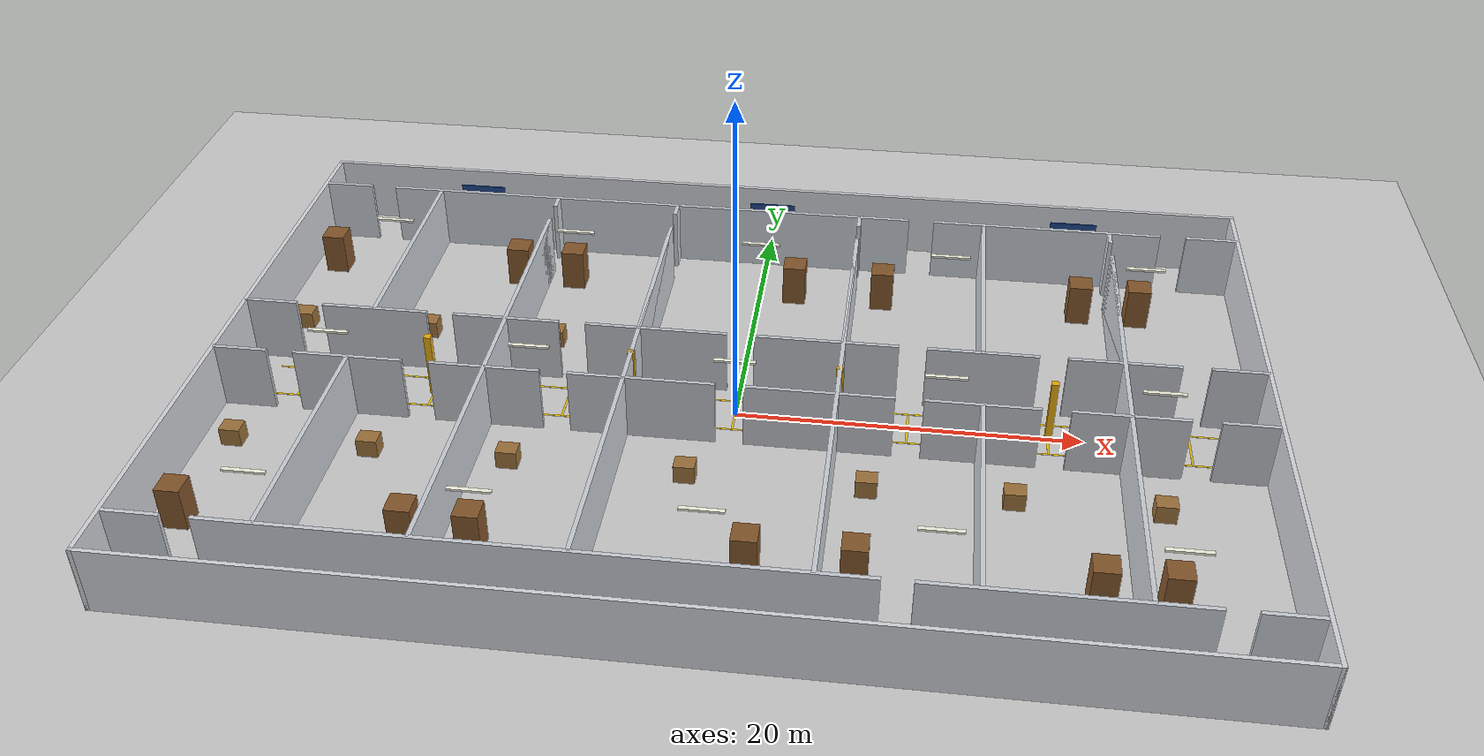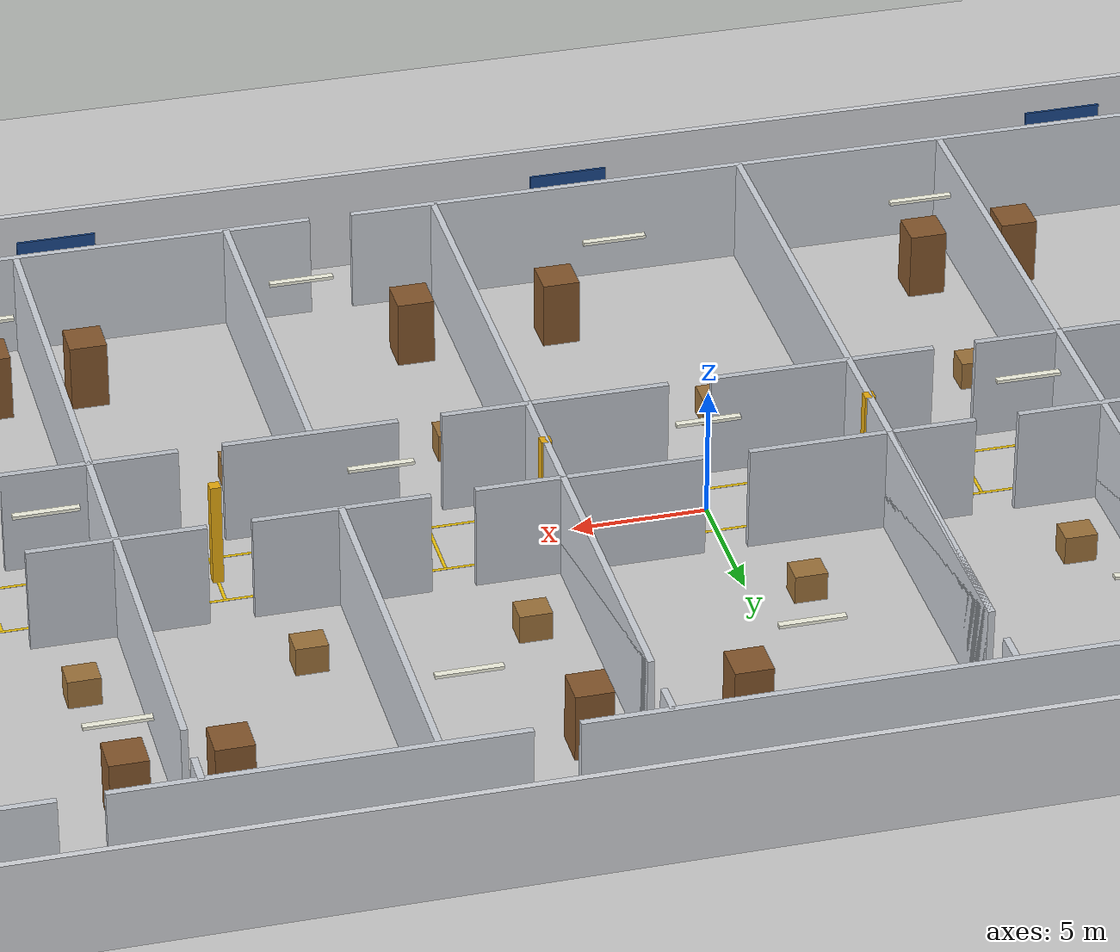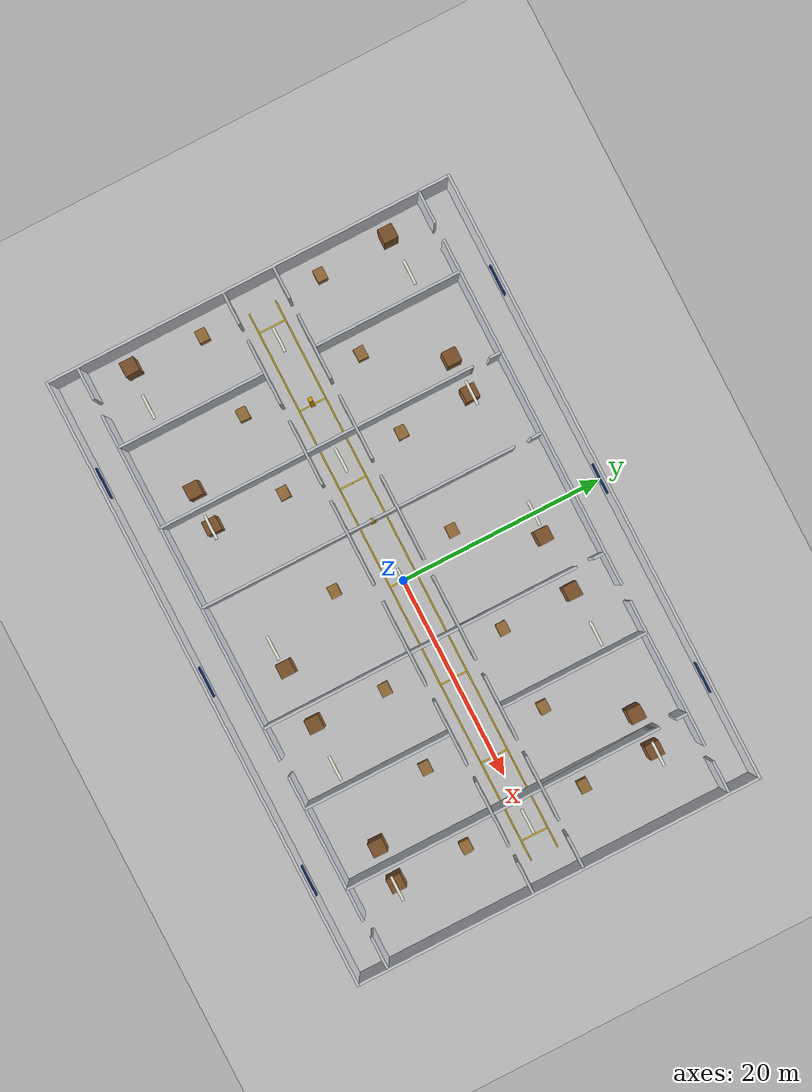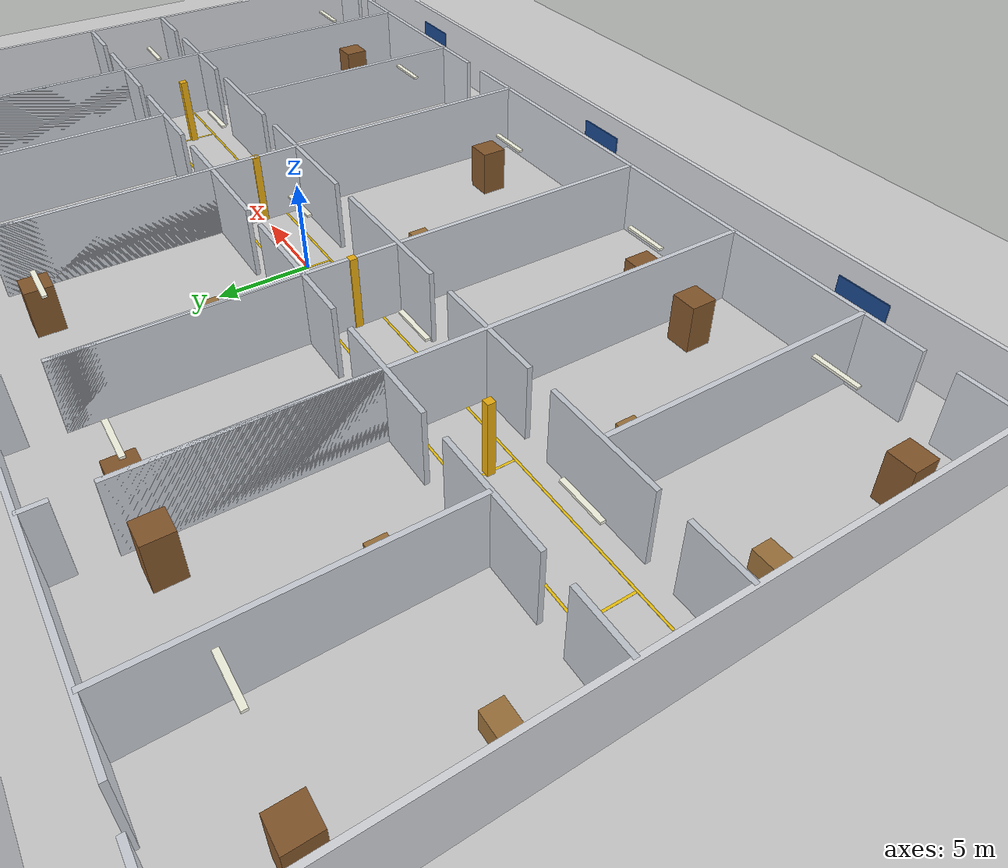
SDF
<sdf version="1.9">
 <world name="garudanex_facility_pro">
  <model name="ground_plane">
   <static>true</static>
   <link name="link">
    <collision name="collision">
     <geometry><plane><normal>0 0 1</normal><size>1 1</size></plane></geometry>
    </collision>
    <visual name="visual">
     <geometry><plane><normal>0 0 1</normal><size>500 500</size></plane></geometry>
     <material>
      <ambient>0.8 0.8 0.8 1</ambient>
      <diffuse>0.8 0.8 0.8 1</diffuse>
      <specular>0.8 0.8 0.8 1</specular>
     </material>
    </visual>
    <inertial>
     <mass>1</mass>
     <inertia><ixx>1</ixx><ixy>0</ixy><ixz>0</ixz><iyy>1</iyy><iyz>0</iyz><izz>1</izz></inertia>
    </inertial>
   </link>
  </model>
  <model name="shell">
   <static>true</static>
   <link name="north">
    <pose>0.000 20.000 2.000 0 0 0</pose>
    <collision name="c"><geometry><box><size>60.250 0.250 4.000</size></box></geometry></collision>
    <visual name="v">
     <geometry><box><size>60.250 0.250 4.000</size></box></geometry>
     <material>
      <ambient>0.504 0.510 0.522 1.00</ambient>
      <diffuse>0.840 0.850 0.870 1.00</diffuse>
      <specular>0.150 0.150 0.150 1.00</specular>
     </material>
    </visual>
   </link>
   <link name="south">
    <pose>0.000 -20.000 2.000 0 0 0</pose>
    <collision name="c"><geometry><box><size>60.250 0.250 4.000</size></box></geometry></collision>
    <visual name="v">
     <geometry><box><size>60.250 0.250 4.000</size></box></geometry>
     <material>
      <ambient>0.504 0.510 0.522 1.00</ambient>
      <diffuse>0.840 0.850 0.870 1.00</diffuse>
      <specular>0.150 0.150 0.150 1.00</specular>
     </material>
    </visual>
   </link>
   <link name="east">
    <pose>30.000 0.000 2.000 0 0 0</pose>
    <collision name="c"><geometry><box><size>0.250 40.250 4.000</size></box></geometry></collision>
    <visual name="v">
     <geometry><box><size>0.250 40.250 4.000</size></box></geometry>
     <material>
      <ambient>0.504 0.510 0.522 1.00</ambient>
      <diffuse>0.840 0.850 0.870 1.00</diffuse>
      <specular>0.150 0.150 0.150 1.00</specular>
     </material>
    </visual>
   </link>
   <link name="west">
    <pose>-30.000 0.000 2.000 0 0 0</pose>
    <collision name="c"><geometry><box><size>0.250 40.250 4.000</size></box></geometry></collision>
    <visual name="v">
     <geometry><box><size>0.250 40.250 4.000</size></box></geometry>
     <material>
      <ambient>0.504 0.510 0.522 1.00</ambient>
      <diffuse>0.840 0.850 0.870 1.00</diffuse>
      <specular>0.150 0.150 0.150 1.00</specular>
     </material>
    </visual>
   </link>
  </model>
  <model name="spine">
   <static>true</static>
   <link name="spine_n_0">
    <pose>-28.400 2.500 2.000 0 0 0</pose>
    <collision name="c"><geometry><box><size>3.200 0.250 4.000</size></box></geometry></collision>
    <visual name="v">
     <geometry><box><size>3.200 0.250 4.000</size></box></geometry>
     <material>
      <ambient>0.456 0.468 0.486 1.00</ambient>
      <diffuse>0.760 0.780 0.810 1.00</diffuse>
      <specular>0.150 0.150 0.150 1.00</specular>
     </material>
    </visual>
   </link>
   <link name="spine_n_2">
    <pose>-22.000 2.500 2.000 0 0 0</pose>
    <collision name="c"><geometry><box><size>6.400 0.250 4.000</size></box></geometry></collision>
    <visual name="v">
     <geometry><box><size>6.400 0.250 4.000</size></box></geometry>
     <material>
      <ambient>0.456 0.468 0.486 1.00</ambient>
      <diffuse>0.760 0.780 0.810 1.00</diffuse>
      <specular>0.150 0.150 0.150 1.00</specular>
     </material>
    </visual>
   </link>
   <link name="spine_n_4">
    <pose>-14.000 2.500 2.000 0 0 0</pose>
    <collision name="c"><geometry><box><size>6.400 0.250 4.000</size></box></geometry></collision>
    <visual name="v">
     <geometry><box><size>6.400 0.250 4.000</size></box></geometry>
     <material>
      <ambient>0.456 0.468 0.486 1.00</ambient>
      <diffuse>0.760 0.780 0.810 1.00</diffuse>
      <specular>0.150 0.150 0.150 1.00</specular>
     </material>
    </visual>
   </link>
   <link name="spine_n_6">
    <pose>-5.000 2.500 2.000 0 0 0</pose>
    <collision name="c"><geometry><box><size>8.400 0.250 4.000</size></box></geometry></collision>
    <visual name="v">
     <geometry><box><size>8.400 0.250 4.000</size></box></geometry>
     <material>
      <ambient>0.456 0.468 0.486 1.00</ambient>
      <diffuse>0.760 0.780 0.810 1.00</diffuse>
      <specular>0.150 0.150 0.150 1.00</specular>
     </material>
    </visual>
   </link>
   <link name="spine_n_8">
    <pose>5.000 2.500 2.000 0 0 0</pose>
    <collision name="c"><geometry><box><size>8.400 0.250 4.000</size></box></geometry></collision>
    <visual name="v">
     <geometry><box><size>8.400 0.250 4.000</size></box></geometry>
     <material>
      <ambient>0.456 0.468 0.486 1.00</ambient>
      <diffuse>0.760 0.780 0.810 1.00</diffuse>
      <specular>0.150 0.150 0.150 1.00</specular>
     </material>
    </visual>
   </link>
   <link name="spine_n_10">
    <pose>14.000 2.500 2.000 0 0 0</pose>
    <collision name="c"><geometry><box><size>6.400 0.250 4.000</size></box></geometry></collision>
    <visual name="v">
     <geometry><box><size>6.400 0.250 4.000</size></box></geometry>
     <material>
      <ambient>0.456 0.468 0.486 1.00</ambient>
      <diffuse>0.760 0.780 0.810 1.00</diffuse>
      <specular>0.150 0.150 0.150 1.00</specular>
     </material>
    </visual>
   </link>
   <link name="spine_n_12">
    <pose>22.000 2.500 2.000 0 0 0</pose>
    <collision name="c"><geometry><box><size>6.400 0.250 4.000</size></box></geometry></collision>
    <visual name="v">
     <geometry><box><size>6.400 0.250 4.000</size></box></geometry>
     <material>
      <ambient>0.456 0.468 0.486 1.00</ambient>
      <diffuse>0.760 0.780 0.810 1.00</diffuse>
      <specular>0.150 0.150 0.150 1.00</specular>
     </material>
    </visual>
   </link>
   <link name="spine_n_14">
    <pose>28.400 2.500 2.000 0 0 0</pose>
    <collision name="c"><geometry><box><size>3.200 0.250 4.000</size></box></geometry></collision>
    <visual name="v">
     <geometry><box><size>3.200 0.250 4.000</size></box></geometry>
     <material>
      <ambient>0.456 0.468 0.486 1.00</ambient>
      <diffuse>0.760 0.780 0.810 1.00</diffuse>
      <specular>0.150 0.150 0.150 1.00</specular>
     </material>
    </visual>
   </link>
   <link name="spine_s_0">
    <pose>-28.400 -2.500 2.000 0 0 0</pose>
    <collision name="c"><geometry><box><size>3.200 0.250 4.000</size></box></geometry></collision>
    <visual name="v">
     <geometry><box><size>3.200 0.250 4.000</size></box></geometry>
     <material>
      <ambient>0.456 0.468 0.486 1.00</ambient>
      <diffuse>0.760 0.780 0.810 1.00</diffuse>
      <specular>0.150 0.150 0.150 1.00</specular>
     </material>
    </visual>
   </link>
   <link name="spine_s_2">
    <pose>-22.000 -2.500 2.000 0 0 0</pose>
    <collision name="c"><geometry><box><size>6.400 0.250 4.000</size></box></geometry></collision>
    <visual name="v">
     <geometry><box><size>6.400 0.250 4.000</size></box></geometry>
     <material>
      <ambient>0.456 0.468 0.486 1.00</ambient>
      <diffuse>0.760 0.780 0.810 1.00</diffuse>
      <specular>0.150 0.150 0.150 1.00</specular>
     </material>
    </visual>
   </link>
   <link name="spine_s_4">
    <pose>-14.000 -2.500 2.000 0 0 0</pose>
    <collision name="c"><geometry><box><size>6.400 0.250 4.000</size></box></geometry></collision>
    <visual name="v">
     <geometry><box><size>6.400 0.250 4.000</size></box></geometry>
     <material>
      <ambient>0.456 0.468 0.486 1.00</ambient>
      <diffuse>0.760 0.780 0.810 1.00</diffuse>
      <specular>0.150 0.150 0.150 1.00</specular>
     </material>
    </visual>
   </link>
   <link name="spine_s_6">
    <pose>-5.000 -2.500 2.000 0 0 0</pose>
    <collision name="c"><geometry><box><size>8.400 0.250 4.000</size></box></geometry></collision>
    <visual name="v">
     <geometry><box><size>8.400 0.250 4.000</size></box></geometry>
     <material>
      <ambient>0.456 0.468 0.486 1.00</ambient>
      <diffuse>0.760 0.780 0.810 1.00</diffuse>
      <specular>0.150 0.150 0.150 1.00</specular>
     </material>
    </visual>
   </link>
   <link name="spine_s_8">
    <pose>5.000 -2.500 2.000 0 0 0</pose>
    <collision name="c"><geometry><box><size>8.400 0.250 4.000</size></box></geometry></collision>
    <visual name="v">
     <geometry><box><size>8.400 0.250 4.000</size></box></geometry>
     <material>
      <ambient>0.456 0.468 0.486 1.00</ambient>
      <diffuse>0.760 0.780 0.810 1.00</diffuse>
      <specular>0.150 0.150 0.150 1.00</specular>
     </material>
    </visual>
   </link>
   <link name="spine_s_10">
    <pose>14.000 -2.500 2.000 0 0 0</pose>
    <collision name="c"><geometry><box><size>6.400 0.250 4.000</size></box></geometry></collision>
    <visual name="v">
     <geometry><box><size>6.400 0.250 4.000</size></box></geometry>
     <material>
      <ambient>0.456 0.468 0.486 1.00</ambient>
      <diffuse>0.760 0.780 0.810 1.00</diffuse>
      <specular>0.150 0.150 0.150 1.00</specular>
     </material>
    </visual>
   </link>
   <link name="spine_s_12">
    <pose>22.000 -2.500 2.000 0 0 0</pose>
    <collision name="c"><geometry><box><size>6.400 0.250 4.000</size></box></geometry></collision>
    <visual name="v">
     <geometry><box><size>6.400 0.250 4.000</size></box></geometry>
     <material>
      <ambient>0.456 0.468 0.486 1.00</ambient>
      <diffuse>0.760 0.780 0.810 1.00</diffuse>
      <specular>0.150 0.150 0.150 1.00</specular>
     </material>
    </visual>
   </link>
   <link name="spine_s_14">
    <pose>28.400 -2.500 2.000 0 0 0</pose>
    <collision name="c"><geometry><box><size>3.200 0.250 4.000</size></box></geometry></collision>
    <visual name="v">
     <geometry><box><size>3.200 0.250 4.000</size></box></geometry>
     <material>
      <ambient>0.456 0.468 0.486 1.00</ambient>
      <diffuse>0.760 0.780 0.810 1.00</diffuse>
      <specular>0.150 0.150 0.150 1.00</specular>
     </material>
    </visual>
   </link>
  </model>
  <model name="rooms_n">
   <static>true</static>
   <link name="pn0_0">
    <pose>-22.000 9.750 2.000 0 0 0</pose>
    <collision name="c"><geometry><box><size>0.250 14.500 4.000</size></box></geometry></collision>
    <visual name="v">
     <geometry><box><size>0.250 14.500 4.000</size></box></geometry>
     <material>
      <ambient>0.480 0.492 0.510 1.00</ambient>
      <diffuse>0.800 0.820 0.850 1.00</diffuse>
      <specular>0.150 0.150 0.150 1.00</specular>
     </material>
    </visual>
   </link>
   <link name="pn1_0">
    <pose>-14.000 8.350 2.000 0 0 0</pose>
    <collision name="c"><geometry><box><size>0.250 11.700 4.000</size></box></geometry></collision>
    <visual name="v">
     <geometry><box><size>0.250 11.700 4.000</size></box></geometry>
     <material>
      <ambient>0.480 0.492 0.510 1.00</ambient>
      <diffuse>0.800 0.820 0.850 1.00</diffuse>
      <specular>0.150 0.150 0.150 1.00</specular>
     </material>
    </visual>
   </link>
   <link name="pn1_2">
    <pose>-14.000 16.400 2.000 0 0 0</pose>
    <collision name="c"><geometry><box><size>0.250 1.200 4.000</size></box></geometry></collision>
    <visual name="v">
     <geometry><box><size>0.250 1.200 4.000</size></box></geometry>
     <material>
      <ambient>0.480 0.492 0.510 1.00</ambient>
      <diffuse>0.800 0.820 0.850 1.00</diffuse>
      <specular>0.150 0.150 0.150 1.00</specular>
     </material>
    </visual>
   </link>
   <link name="pn2_0">
    <pose>-6.000 8.350 2.000 0 0 0</pose>
    <collision name="c"><geometry><box><size>0.250 11.700 4.000</size></box></geometry></collision>
    <visual name="v">
     <geometry><box><size>0.250 11.700 4.000</size></box></geometry>
     <material>
      <ambient>0.480 0.492 0.510 1.00</ambient>
      <diffuse>0.800 0.820 0.850 1.00</diffuse>
      <specular>0.150 0.150 0.150 1.00</specular>
     </material>
    </visual>
   </link>
   <link name="pn2_2">
    <pose>-6.000 16.400 2.000 0 0 0</pose>
    <collision name="c"><geometry><box><size>0.250 1.200 4.000</size></box></geometry></collision>
    <visual name="v">
     <geometry><box><size>0.250 1.200 4.000</size></box></geometry>
     <material>
      <ambient>0.480 0.492 0.510 1.00</ambient>
      <diffuse>0.800 0.820 0.850 1.00</diffuse>
      <specular>0.150 0.150 0.150 1.00</specular>
     </material>
    </visual>
   </link>
   <link name="pn3_0">
    <pose>6.000 8.350 2.000 0 0 0</pose>
    <collision name="c"><geometry><box><size>0.250 11.700 4.000</size></box></geometry></collision>
    <visual name="v">
     <geometry><box><size>0.250 11.700 4.000</size></box></geometry>
     <material>
      <ambient>0.480 0.492 0.510 1.00</ambient>
      <diffuse>0.800 0.820 0.850 1.00</diffuse>
      <specular>0.150 0.150 0.150 1.00</specular>
     </material>
    </visual>
   </link>
   <link name="pn3_2">
    <pose>6.000 16.400 2.000 0 0 0</pose>
    <collision name="c"><geometry><box><size>0.250 1.200 4.000</size></box></geometry></collision>
    <visual name="v">
     <geometry><box><size>0.250 1.200 4.000</size></box></geometry>
     <material>
      <ambient>0.480 0.492 0.510 1.00</ambient>
      <diffuse>0.800 0.820 0.850 1.00</diffuse>
      <specular>0.150 0.150 0.150 1.00</specular>
     </material>
    </visual>
   </link>
   <link name="pn4_0">
    <pose>14.000 9.750 2.000 0 0 0</pose>
    <collision name="c"><geometry><box><size>0.250 14.500 4.000</size></box></geometry></collision>
    <visual name="v">
     <geometry><box><size>0.250 14.500 4.000</size></box></geometry>
     <material>
      <ambient>0.480 0.492 0.510 1.00</ambient>
      <diffuse>0.800 0.820 0.850 1.00</diffuse>
      <specular>0.150 0.150 0.150 1.00</specular>
     </material>
    </visual>
   </link>
   <link name="pn5_0">
    <pose>22.000 8.350 2.000 0 0 0</pose>
    <collision name="c"><geometry><box><size>0.250 11.700 4.000</size></box></geometry></collision>
    <visual name="v">
     <geometry><box><size>0.250 11.700 4.000</size></box></geometry>
     <material>
      <ambient>0.480 0.492 0.510 1.00</ambient>
      <diffuse>0.800 0.820 0.850 1.00</diffuse>
      <specular>0.150 0.150 0.150 1.00</specular>
     </material>
    </visual>
   </link>
   <link name="pn5_2">
    <pose>22.000 16.400 2.000 0 0 0</pose>
    <collision name="c"><geometry><box><size>0.250 1.200 4.000</size></box></geometry></collision>
    <visual name="v">
     <geometry><box><size>0.250 1.200 4.000</size></box></geometry>
     <material>
      <ambient>0.480 0.492 0.510 1.00</ambient>
      <diffuse>0.800 0.820 0.850 1.00</diffuse>
      <specular>0.150 0.150 0.150 1.00</specular>
     </material>
    </visual>
   </link>
   <link name="backn_0">
    <pose>-28.400 17.000 2.000 0 0 0</pose>
    <collision name="c"><geometry><box><size>3.200 0.250 4.000</size></box></geometry></collision>
    <visual name="v">
     <geometry><box><size>3.200 0.250 4.000</size></box></geometry>
     <material>
      <ambient>0.480 0.492 0.510 1.00</ambient>
      <diffuse>0.800 0.820 0.850 1.00</diffuse>
      <specular>0.150 0.150 0.150 1.00</specular>
     </material>
    </visual>
   </link>
   <link name="backn_2">
    <pose>-8.000 17.000 2.000 0 0 0</pose>
    <collision name="c"><geometry><box><size>34.400 0.250 4.000</size></box></geometry></collision>
    <visual name="v">
     <geometry><box><size>34.400 0.250 4.000</size></box></geometry>
     <material>
      <ambient>0.480 0.492 0.510 1.00</ambient>
      <diffuse>0.800 0.820 0.850 1.00</diffuse>
      <specular>0.150 0.150 0.150 1.00</specular>
     </material>
    </visual>
   </link>
   <link name="backn_4">
    <pose>18.000 17.000 2.000 0 0 0</pose>
    <collision name="c"><geometry><box><size>14.400 0.250 4.000</size></box></geometry></collision>
    <visual name="v">
     <geometry><box><size>14.400 0.250 4.000</size></box></geometry>
     <material>
      <ambient>0.480 0.492 0.510 1.00</ambient>
      <diffuse>0.800 0.820 0.850 1.00</diffuse>
      <specular>0.150 0.150 0.150 1.00</specular>
     </material>
    </visual>
   </link>
   <link name="backn_6">
    <pose>28.400 17.000 2.000 0 0 0</pose>
    <collision name="c"><geometry><box><size>3.200 0.250 4.000</size></box></geometry></collision>
    <visual name="v">
     <geometry><box><size>3.200 0.250 4.000</size></box></geometry>
     <material>
      <ambient>0.480 0.492 0.510 1.00</ambient>
      <diffuse>0.800 0.820 0.850 1.00</diffuse>
      <specular>0.150 0.150 0.150 1.00</specular>
     </material>
    </visual>
   </link>
  </model>
  <model name="rooms_s">
   <static>true</static>
   <link name="ps0_0">
    <pose>-22.000 -9.750 2.000 0 0 0</pose>
    <collision name="c"><geometry><box><size>0.250 14.500 4.000</size></box></geometry></collision>
    <visual name="v">
     <geometry><box><size>0.250 14.500 4.000</size></box></geometry>
     <material>
      <ambient>0.480 0.492 0.510 1.00</ambient>
      <diffuse>0.800 0.820 0.850 1.00</diffuse>
      <specular>0.150 0.150 0.150 1.00</specular>
     </material>
    </visual>
   </link>
   <link name="ps1_0">
    <pose>-14.000 -1.400 2.000 0 0 0</pose>
    <collision name="c"><geometry><box><size>0.250 31.200 4.000</size></box></geometry></collision>
    <visual name="v">
     <geometry><box><size>0.250 31.200 4.000</size></box></geometry>
     <material>
      <ambient>0.480 0.492 0.510 1.00</ambient>
      <diffuse>0.800 0.820 0.850 1.00</diffuse>
      <specular>0.150 0.150 0.150 1.00</specular>
     </material>
    </visual>
   </link>
   <link name="ps2_0">
    <pose>-6.000 -1.400 2.000 0 0 0</pose>
    <collision name="c"><geometry><box><size>0.250 31.200 4.000</size></box></geometry></collision>
    <visual name="v">
     <geometry><box><size>0.250 31.200 4.000</size></box></geometry>
     <material>
      <ambient>0.480 0.492 0.510 1.00</ambient>
      <diffuse>0.800 0.820 0.850 1.00</diffuse>
      <specular>0.150 0.150 0.150 1.00</specular>
     </material>
    </visual>
   </link>
   <link name="ps3_0">
    <pose>6.000 -1.400 2.000 0 0 0</pose>
    <collision name="c"><geometry><box><size>0.250 31.200 4.000</size></box></geometry></collision>
    <visual name="v">
     <geometry><box><size>0.250 31.200 4.000</size></box></geometry>
     <material>
      <ambient>0.480 0.492 0.510 1.00</ambient>
      <diffuse>0.800 0.820 0.850 1.00</diffuse>
      <specular>0.150 0.150 0.150 1.00</specular>
     </material>
    </visual>
   </link>
   <link name="ps4_0">
    <pose>14.000 -9.750 2.000 0 0 0</pose>
    <collision name="c"><geometry><box><size>0.250 14.500 4.000</size></box></geometry></collision>
    <visual name="v">
     <geometry><box><size>0.250 14.500 4.000</size></box></geometry>
     <material>
      <ambient>0.480 0.492 0.510 1.00</ambient>
      <diffuse>0.800 0.820 0.850 1.00</diffuse>
      <specular>0.150 0.150 0.150 1.00</specular>
     </material>
    </visual>
   </link>
   <link name="ps5_0">
    <pose>22.000 -1.400 2.000 0 0 0</pose>
    <collision name="c"><geometry><box><size>0.250 31.200 4.000</size></box></geometry></collision>
    <visual name="v">
     <geometry><box><size>0.250 31.200 4.000</size></box></geometry>
     <material>
      <ambient>0.480 0.492 0.510 1.00</ambient>
      <diffuse>0.800 0.820 0.850 1.00</diffuse>
      <specular>0.150 0.150 0.150 1.00</specular>
     </material>
    </visual>
   </link>
   <link name="backs_0">
    <pose>-28.400 -17.000 2.000 0 0 0</pose>
    <collision name="c"><geometry><box><size>3.200 0.250 4.000</size></box></geometry></collision>
    <visual name="v">
     <geometry><box><size>3.200 0.250 4.000</size></box></geometry>
     <material>
      <ambient>0.480 0.492 0.510 1.00</ambient>
      <diffuse>0.800 0.820 0.850 1.00</diffuse>
      <specular>0.150 0.150 0.150 1.00</specular>
     </material>
    </visual>
   </link>
   <link name="backs_2">
    <pose>-8.000 -17.000 2.000 0 0 0</pose>
    <collision name="c"><geometry><box><size>34.400 0.250 4.000</size></box></geometry></collision>
    <visual name="v">
     <geometry><box><size>34.400 0.250 4.000</size></box></geometry>
     <material>
      <ambient>0.480 0.492 0.510 1.00</ambient>
      <diffuse>0.800 0.820 0.850 1.00</diffuse>
      <specular>0.150 0.150 0.150 1.00</specular>
     </material>
    </visual>
   </link>
   <link name="backs_4">
    <pose>18.000 -17.000 2.000 0 0 0</pose>
    <collision name="c"><geometry><box><size>14.400 0.250 4.000</size></box></geometry></collision>
    <visual name="v">
     <geometry><box><size>14.400 0.250 4.000</size></box></geometry>
     <material>
      <ambient>0.480 0.492 0.510 1.00</ambient>
      <diffuse>0.800 0.820 0.850 1.00</diffuse>
      <specular>0.150 0.150 0.150 1.00</specular>
     </material>
    </visual>
   </link>
   <link name="backs_6">
    <pose>28.400 -17.000 2.000 0 0 0</pose>
    <collision name="c"><geometry><box><size>3.200 0.250 4.000</size></box></geometry></collision>
    <visual name="v">
     <geometry><box><size>3.200 0.250 4.000</size></box></geometry>
     <material>
      <ambient>0.480 0.492 0.510 1.00</ambient>
      <diffuse>0.800 0.820 0.850 1.00</diffuse>
      <specular>0.150 0.150 0.150 1.00</specular>
     </material>
    </visual>
   </link>
  </model>
  <model name="crates">
   <static>true</static>
   <link name="crate_0">
    <pose>-28.200 13.000 1.300 0 0 0</pose>
    <collision name="c"><geometry><box><size>1.400 1.400 2.600</size></box></geometry></collision>
    <visual name="v">
     <geometry><box><size>1.400 1.400 2.600</size></box></geometry>
     <material>
      <ambient>0.312 0.204 0.102 1.00</ambient>
      <diffuse>0.520 0.340 0.170 1.00</diffuse>
      <specular>0.150 0.150 0.150 1.00</specular>
     </material>
    </visual>
   </link>
   <link name="crate_1">
    <pose>-28.200 -13.000 1.300 0 0 0</pose>
    <collision name="c"><geometry><box><size>1.400 1.400 2.600</size></box></geometry></collision>
    <visual name="v">
     <geometry><box><size>1.400 1.400 2.600</size></box></geometry>
     <material>
      <ambient>0.312 0.204 0.102 1.00</ambient>
      <diffuse>0.520 0.340 0.170 1.00</diffuse>
      <specular>0.150 0.150 0.150 1.00</specular>
     </material>
    </visual>
   </link>
   <link name="crate_2">
    <pose>-15.800 13.000 1.300 0 0 0</pose>
    <collision name="c"><geometry><box><size>1.400 1.400 2.600</size></box></geometry></collision>
    <visual name="v">
     <geometry><box><size>1.400 1.400 2.600</size></box></geometry>
     <material>
      <ambient>0.312 0.204 0.102 1.00</ambient>
      <diffuse>0.520 0.340 0.170 1.00</diffuse>
      <specular>0.150 0.150 0.150 1.00</specular>
     </material>
    </visual>
   </link>
   <link name="crate_3">
    <pose>-15.800 -13.000 1.300 0 0 0</pose>
    <collision name="c"><geometry><box><size>1.400 1.400 2.600</size></box></geometry></collision>
    <visual name="v">
     <geometry><box><size>1.400 1.400 2.600</size></box></geometry>
     <material>
      <ambient>0.312 0.204 0.102 1.00</ambient>
      <diffuse>0.520 0.340 0.170 1.00</diffuse>
      <specular>0.150 0.150 0.150 1.00</specular>
     </material>
    </visual>
   </link>
   <link name="crate_4">
    <pose>-12.200 13.000 1.300 0 0 0</pose>
    <collision name="c"><geometry><box><size>1.400 1.400 2.600</size></box></geometry></collision>
    <visual name="v">
     <geometry><box><size>1.400 1.400 2.600</size></box></geometry>
     <material>
      <ambient>0.312 0.204 0.102 1.00</ambient>
      <diffuse>0.520 0.340 0.170 1.00</diffuse>
      <specular>0.150 0.150 0.150 1.00</specular>
     </material>
    </visual>
   </link>
   <link name="crate_5">
    <pose>-12.200 -13.000 1.300 0 0 0</pose>
    <collision name="c"><geometry><box><size>1.400 1.400 2.600</size></box></geometry></collision>
    <visual name="v">
     <geometry><box><size>1.400 1.400 2.600</size></box></geometry>
     <material>
      <ambient>0.312 0.204 0.102 1.00</ambient>
      <diffuse>0.520 0.340 0.170 1.00</diffuse>
      <specular>0.150 0.150 0.150 1.00</specular>
     </material>
    </visual>
   </link>
   <link name="crate_6">
    <pose>2.200 13.000 1.300 0 0 0</pose>
    <collision name="c"><geometry><box><size>1.400 1.400 2.600</size></box></geometry></collision>
    <visual name="v">
     <geometry><box><size>1.400 1.400 2.600</size></box></geometry>
     <material>
      <ambient>0.312 0.204 0.102 1.00</ambient>
      <diffuse>0.520 0.340 0.170 1.00</diffuse>
      <specular>0.150 0.150 0.150 1.00</specular>
     </material>
    </visual>
   </link>
   <link name="crate_7">
    <pose>2.200 -13.000 1.300 0 0 0</pose>
    <collision name="c"><geometry><box><size>1.400 1.400 2.600</size></box></geometry></collision>
    <visual name="v">
     <geometry><box><size>1.400 1.400 2.600</size></box></geometry>
     <material>
      <ambient>0.312 0.204 0.102 1.00</ambient>
      <diffuse>0.520 0.340 0.170 1.00</diffuse>
      <specular>0.150 0.150 0.150 1.00</specular>
     </material>
    </visual>
   </link>
   <link name="crate_8">
    <pose>7.800 13.000 1.300 0 0 0</pose>
    <collision name="c"><geometry><box><size>1.400 1.400 2.600</size></box></geometry></collision>
    <visual name="v">
     <geometry><box><size>1.400 1.400 2.600</size></box></geometry>
     <material>
      <ambient>0.312 0.204 0.102 1.00</ambient>
      <diffuse>0.520 0.340 0.170 1.00</diffuse>
      <specular>0.150 0.150 0.150 1.00</specular>
     </material>
    </visual>
   </link>
   <link name="crate_9">
    <pose>7.800 -13.000 1.300 0 0 0</pose>
    <collision name="c"><geometry><box><size>1.400 1.400 2.600</size></box></geometry></collision>
    <visual name="v">
     <geometry><box><size>1.400 1.400 2.600</size></box></geometry>
     <material>
      <ambient>0.312 0.204 0.102 1.00</ambient>
      <diffuse>0.520 0.340 0.170 1.00</diffuse>
      <specular>0.150 0.150 0.150 1.00</specular>
     </material>
    </visual>
   </link>
   <link name="crate_10">
    <pose>20.200 13.000 1.300 0 0 0</pose>
    <collision name="c"><geometry><box><size>1.400 1.400 2.600</size></box></geometry></collision>
    <visual name="v">
     <geometry><box><size>1.400 1.400 2.600</size></box></geometry>
     <material>
      <ambient>0.312 0.204 0.102 1.00</ambient>
      <diffuse>0.520 0.340 0.170 1.00</diffuse>
      <specular>0.150 0.150 0.150 1.00</specular>
     </material>
    </visual>
   </link>
   <link name="crate_11">
    <pose>20.200 -13.000 1.300 0 0 0</pose>
    <collision name="c"><geometry><box><size>1.400 1.400 2.600</size></box></geometry></collision>
    <visual name="v">
     <geometry><box><size>1.400 1.400 2.600</size></box></geometry>
     <material>
      <ambient>0.312 0.204 0.102 1.00</ambient>
      <diffuse>0.520 0.340 0.170 1.00</diffuse>
      <specular>0.150 0.150 0.150 1.00</specular>
     </material>
    </visual>
   </link>
   <link name="crate_12">
    <pose>23.800 13.000 1.300 0 0 0</pose>
    <collision name="c"><geometry><box><size>1.400 1.400 2.600</size></box></geometry></collision>
    <visual name="v">
     <geometry><box><size>1.400 1.400 2.600</size></box></geometry>
     <material>
      <ambient>0.312 0.204 0.102 1.00</ambient>
      <diffuse>0.520 0.340 0.170 1.00</diffuse>
      <specular>0.150 0.150 0.150 1.00</specular>
     </material>
    </visual>
   </link>
   <link name="crate_13">
    <pose>23.800 -13.000 1.300 0 0 0</pose>
    <collision name="c"><geometry><box><size>1.400 1.400 2.600</size></box></geometry></collision>
    <visual name="v">
     <geometry><box><size>1.400 1.400 2.600</size></box></geometry>
     <material>
      <ambient>0.312 0.204 0.102 1.00</ambient>
      <diffuse>0.520 0.340 0.170 1.00</diffuse>
      <specular>0.150 0.150 0.150 1.00</specular>
     </material>
    </visual>
   </link>
  </model>
  <model name="pallets">
   <static>true</static>
   <link name="pallet_0">
    <pose>-28.000 6.000 0.550 0 0 0</pose>
    <collision name="c"><geometry><box><size>1.200 1.000 1.100</size></box></geometry></collision>
    <visual name="v">
     <geometry><box><size>1.200 1.000 1.100</size></box></geometry>
     <material>
      <ambient>0.372 0.270 0.138 1.00</ambient>
      <diffuse>0.620 0.450 0.230 1.00</diffuse>
      <specular>0.150 0.150 0.150 1.00</specular>
     </material>
    </visual>
   </link>
   <link name="pallet_1">
    <pose>-28.000 -6.000 0.550 0 0 0</pose>
    <collision name="c"><geometry><box><size>1.200 1.000 1.100</size></box></geometry></collision>
    <visual name="v">
     <geometry><box><size>1.200 1.000 1.100</size></box></geometry>
     <material>
      <ambient>0.372 0.270 0.138 1.00</ambient>
      <diffuse>0.620 0.450 0.230 1.00</diffuse>
      <specular>0.150 0.150 0.150 1.00</specular>
     </material>
    </visual>
   </link>
   <link name="pallet_2">
    <pose>-20.000 6.000 0.550 0 0 0</pose>
    <collision name="c"><geometry><box><size>1.200 1.000 1.100</size></box></geometry></collision>
    <visual name="v">
     <geometry><box><size>1.200 1.000 1.100</size></box></geometry>
     <material>
      <ambient>0.372 0.270 0.138 1.00</ambient>
      <diffuse>0.620 0.450 0.230 1.00</diffuse>
      <specular>0.150 0.150 0.150 1.00</specular>
     </material>
    </visual>
   </link>
   <link name="pallet_3">
    <pose>-20.000 -6.000 0.550 0 0 0</pose>
    <collision name="c"><geometry><box><size>1.200 1.000 1.100</size></box></geometry></collision>
    <visual name="v">
     <geometry><box><size>1.200 1.000 1.100</size></box></geometry>
     <material>
      <ambient>0.372 0.270 0.138 1.00</ambient>
      <diffuse>0.620 0.450 0.230 1.00</diffuse>
      <specular>0.150 0.150 0.150 1.00</specular>
     </material>
    </visual>
   </link>
   <link name="pallet_4">
    <pose>-12.000 6.000 0.550 0 0 0</pose>
    <collision name="c"><geometry><box><size>1.200 1.000 1.100</size></box></geometry></collision>
    <visual name="v">
     <geometry><box><size>1.200 1.000 1.100</size></box></geometry>
     <material>
      <ambient>0.372 0.270 0.138 1.00</ambient>
      <diffuse>0.620 0.450 0.230 1.00</diffuse>
      <specular>0.150 0.150 0.150 1.00</specular>
     </material>
    </visual>
   </link>
   <link name="pallet_5">
    <pose>-12.000 -6.000 0.550 0 0 0</pose>
    <collision name="c"><geometry><box><size>1.200 1.000 1.100</size></box></geometry></collision>
    <visual name="v">
     <geometry><box><size>1.200 1.000 1.100</size></box></geometry>
     <material>
      <ambient>0.372 0.270 0.138 1.00</ambient>
      <diffuse>0.620 0.450 0.230 1.00</diffuse>
      <specular>0.150 0.150 0.150 1.00</specular>
     </material>
    </visual>
   </link>
   <link name="pallet_6">
    <pose>-2.000 6.000 0.550 0 0 0</pose>
    <collision name="c"><geometry><box><size>1.200 1.000 1.100</size></box></geometry></collision>
    <visual name="v">
     <geometry><box><size>1.200 1.000 1.100</size></box></geometry>
     <material>
      <ambient>0.372 0.270 0.138 1.00</ambient>
      <diffuse>0.620 0.450 0.230 1.00</diffuse>
      <specular>0.150 0.150 0.150 1.00</specular>
     </material>
    </visual>
   </link>
   <link name="pallet_7">
    <pose>-2.000 -6.000 0.550 0 0 0</pose>
    <collision name="c"><geometry><box><size>1.200 1.000 1.100</size></box></geometry></collision>
    <visual name="v">
     <geometry><box><size>1.200 1.000 1.100</size></box></geometry>
     <material>
      <ambient>0.372 0.270 0.138 1.00</ambient>
      <diffuse>0.620 0.450 0.230 1.00</diffuse>
      <specular>0.150 0.150 0.150 1.00</specular>
     </material>
    </visual>
   </link>
   <link name="pallet_8">
    <pose>8.000 6.000 0.550 0 0 0</pose>
    <collision name="c"><geometry><box><size>1.200 1.000 1.100</size></box></geometry></collision>
    <visual name="v">
     <geometry><box><size>1.200 1.000 1.100</size></box></geometry>
     <material>
      <ambient>0.372 0.270 0.138 1.00</ambient>
      <diffuse>0.620 0.450 0.230 1.00</diffuse>
      <specular>0.150 0.150 0.150 1.00</specular>
     </material>
    </visual>
   </link>
   <link name="pallet_9">
    <pose>8.000 -6.000 0.550 0 0 0</pose>
    <collision name="c"><geometry><box><size>1.200 1.000 1.100</size></box></geometry></collision>
    <visual name="v">
     <geometry><box><size>1.200 1.000 1.100</size></box></geometry>
     <material>
      <ambient>0.372 0.270 0.138 1.00</ambient>
      <diffuse>0.620 0.450 0.230 1.00</diffuse>
      <specular>0.150 0.150 0.150 1.00</specular>
     </material>
    </visual>
   </link>
   <link name="pallet_10">
    <pose>16.000 6.000 0.550 0 0 0</pose>
    <collision name="c"><geometry><box><size>1.200 1.000 1.100</size></box></geometry></collision>
    <visual name="v">
     <geometry><box><size>1.200 1.000 1.100</size></box></geometry>
     <material>
      <ambient>0.372 0.270 0.138 1.00</ambient>
      <diffuse>0.620 0.450 0.230 1.00</diffuse>
      <specular>0.150 0.150 0.150 1.00</specular>
     </material>
    </visual>
   </link>
   <link name="pallet_11">
    <pose>16.000 -6.000 0.550 0 0 0</pose>
    <collision name="c"><geometry><box><size>1.200 1.000 1.100</size></box></geometry></collision>
    <visual name="v">
     <geometry><box><size>1.200 1.000 1.100</size></box></geometry>
     <material>
      <ambient>0.372 0.270 0.138 1.00</ambient>
      <diffuse>0.620 0.450 0.230 1.00</diffuse>
      <specular>0.150 0.150 0.150 1.00</specular>
     </material>
    </visual>
   </link>
   <link name="pallet_12">
    <pose>24.000 6.000 0.550 0 0 0</pose>
    <collision name="c"><geometry><box><size>1.200 1.000 1.100</size></box></geometry></collision>
    <visual name="v">
     <geometry><box><size>1.200 1.000 1.100</size></box></geometry>
     <material>
      <ambient>0.372 0.270 0.138 1.00</ambient>
      <diffuse>0.620 0.450 0.230 1.00</diffuse>
      <specular>0.150 0.150 0.150 1.00</specular>
     </material>
    </visual>
   </link>
   <link name="pallet_13">
    <pose>24.000 -6.000 0.550 0 0 0</pose>
    <collision name="c"><geometry><box><size>1.200 1.000 1.100</size></box></geometry></collision>
    <visual name="v">
     <geometry><box><size>1.200 1.000 1.100</size></box></geometry>
     <material>
      <ambient>0.372 0.270 0.138 1.00</ambient>
      <diffuse>0.620 0.450 0.230 1.00</diffuse>
      <specular>0.150 0.150 0.150 1.00</specular>
     </material>
    </visual>
   </link>
  </model>
  <model name="columns">
   <static>true</static>
   <link name="col_0">
    <pose>-18.000 0.000 2.000 0 0 0</pose>
    <collision name="c"><geometry><box><size>0.400 0.400 4.000</size></box></geometry></collision>
    <visual name="v">
     <geometry><box><size>0.400 0.400 4.000</size></box></geometry>
     <material>
      <ambient>0.552 0.408 0.036 1.00</ambient>
      <diffuse>0.920 0.680 0.060 1.00</diffuse>
      <specular>0.150 0.150 0.150 1.00</specular>
     </material>
    </visual>
   </link>
   <link name="col_1">
    <pose>-6.000 0.000 2.000 0 0 0</pose>
    <collision name="c"><geometry><box><size>0.400 0.400 4.000</size></box></geometry></collision>
    <visual name="v">
     <geometry><box><size>0.400 0.400 4.000</size></box></geometry>
     <material>
      <ambient>0.552 0.408 0.036 1.00</ambient>
      <diffuse>0.920 0.680 0.060 1.00</diffuse>
      <specular>0.150 0.150 0.150 1.00</specular>
     </material>
    </visual>
   </link>
   <link name="col_2">
    <pose>6.000 0.000 2.000 0 0 0</pose>
    <collision name="c"><geometry><box><size>0.400 0.400 4.000</size></box></geometry></collision>
    <visual name="v">
     <geometry><box><size>0.400 0.400 4.000</size></box></geometry>
     <material>
      <ambient>0.552 0.408 0.036 1.00</ambient>
      <diffuse>0.920 0.680 0.060 1.00</diffuse>
      <specular>0.150 0.150 0.150 1.00</specular>
     </material>
    </visual>
   </link>
   <link name="col_3">
    <pose>18.000 0.000 2.000 0 0 0</pose>
    <collision name="c"><geometry><box><size>0.400 0.400 4.000</size></box></geometry></collision>
    <visual name="v">
     <geometry><box><size>0.400 0.400 4.000</size></box></geometry>
     <material>
      <ambient>0.552 0.408 0.036 1.00</ambient>
      <diffuse>0.920 0.680 0.060 1.00</diffuse>
      <specular>0.150 0.150 0.150 1.00</specular>
     </material>
    </visual>
   </link>
  </model>
  <model name="ceiling_fixtures">
   <static>true</static>
   <link name="ceiling_fixtures_0">
    <pose>-24 -13 3.85 0 0 0</pose>
    <visual name="v">
     <geometry><box><size>2.4 0.25 0.12</size></box></geometry>
     <material>
      <ambient>0.679 0.679 0.630 1.00</ambient>
      <diffuse>0.970 0.970 0.900 1.00</diffuse>
      <emissive>0.970 0.970 0.900 1.00</emissive>
     </material>
    </visual>
   </link>
   <link name="ceiling_fixtures_1">
    <pose>-24 0 3.85 0 0 0</pose>
    <visual name="v">
     <geometry><box><size>2.4 0.25 0.12</size></box></geometry>
     <material>
      <ambient>0.679 0.679 0.630 1.00</ambient>
      <diffuse>0.970 0.970 0.900 1.00</diffuse>
      <emissive>0.970 0.970 0.900 1.00</emissive>
     </material>
    </visual>
   </link>
   <link name="ceiling_fixtures_2">
    <pose>-24 13 3.85 0 0 0</pose>
    <visual name="v">
     <geometry><box><size>2.4 0.25 0.12</size></box></geometry>
     <material>
      <ambient>0.679 0.679 0.630 1.00</ambient>
      <diffuse>0.970 0.970 0.900 1.00</diffuse>
      <emissive>0.970 0.970 0.900 1.00</emissive>
     </material>
    </visual>
   </link>
   <link name="ceiling_fixtures_3">
    <pose>-12 -13 3.85 0 0 0</pose>
    <visual name="v">
     <geometry><box><size>2.4 0.25 0.12</size></box></geometry>
     <material>
      <ambient>0.679 0.679 0.630 1.00</ambient>
      <diffuse>0.970 0.970 0.900 1.00</diffuse>
      <emissive>0.970 0.970 0.900 1.00</emissive>
     </material>
    </visual>
   </link>
   <link name="ceiling_fixtures_4">
    <pose>-12 0 3.85 0 0 0</pose>
    <visual name="v">
     <geometry><box><size>2.4 0.25 0.12</size></box></geometry>
     <material>
      <ambient>0.679 0.679 0.630 1.00</ambient>
      <diffuse>0.970 0.970 0.900 1.00</diffuse>
      <emissive>0.970 0.970 0.900 1.00</emissive>
     </material>
    </visual>
   </link>
   <link name="ceiling_fixtures_5">
    <pose>-12 13 3.85 0 0 0</pose>
    <visual name="v">
     <geometry><box><size>2.4 0.25 0.12</size></box></geometry>
     <material>
      <ambient>0.679 0.679 0.630 1.00</ambient>
      <diffuse>0.970 0.970 0.900 1.00</diffuse>
      <emissive>0.970 0.970 0.900 1.00</emissive>
     </material>
    </visual>
   </link>
   <link name="ceiling_fixtures_6">
    <pose>0 -13 3.85 0 0 0</pose>
    <visual name="v">
     <geometry><box><size>2.4 0.25 0.12</size></box></geometry>
     <material>
      <ambient>0.679 0.679 0.630 1.00</ambient>
      <diffuse>0.970 0.970 0.900 1.00</diffuse>
      <emissive>0.970 0.970 0.900 1.00</emissive>
     </material>
    </visual>
   </link>
   <link name="ceiling_fixtures_7">
    <pose>0 0 3.85 0 0 0</pose>
    <visual name="v">
     <geometry><box><size>2.4 0.25 0.12</size></box></geometry>
     <material>
      <ambient>0.679 0.679 0.630 1.00</ambient>
      <diffuse>0.970 0.970 0.900 1.00</diffuse>
      <emissive>0.970 0.970 0.900 1.00</emissive>
     </material>
    </visual>
   </link>
   <link name="ceiling_fixtures_8">
    <pose>0 13 3.85 0 0 0</pose>
    <visual name="v">
     <geometry><box><size>2.4 0.25 0.12</size></box></geometry>
     <material>
      <ambient>0.679 0.679 0.630 1.00</ambient>
      <diffuse>0.970 0.970 0.900 1.00</diffuse>
      <emissive>0.970 0.970 0.900 1.00</emissive>
     </material>
    </visual>
   </link>
   <link name="ceiling_fixtures_9">
    <pose>12 -13 3.85 0 0 0</pose>
    <visual name="v">
     <geometry><box><size>2.4 0.25 0.12</size></box></geometry>
     <material>
      <ambient>0.679 0.679 0.630 1.00</ambient>
      <diffuse>0.970 0.970 0.900 1.00</diffuse>
      <emissive>0.970 0.970 0.900 1.00</emissive>
     </material>
    </visual>
   </link>
   <link name="ceiling_fixtures_10">
    <pose>12 0 3.85 0 0 0</pose>
    <visual name="v">
     <geometry><box><size>2.4 0.25 0.12</size></box></geometry>
     <material>
      <ambient>0.679 0.679 0.630 1.00</ambient>
      <diffuse>0.970 0.970 0.900 1.00</diffuse>
      <emissive>0.970 0.970 0.900 1.00</emissive>
     </material>
    </visual>
   </link>
   <link name="ceiling_fixtures_11">
    <pose>12 13 3.85 0 0 0</pose>
    <visual name="v">
     <geometry><box><size>2.4 0.25 0.12</size></box></geometry>
     <material>
      <ambient>0.679 0.679 0.630 1.00</ambient>
      <diffuse>0.970 0.970 0.900 1.00</diffuse>
      <emissive>0.970 0.970 0.900 1.00</emissive>
     </material>
    </visual>
   </link>
   <link name="ceiling_fixtures_12">
    <pose>24 -13 3.85 0 0 0</pose>
    <visual name="v">
     <geometry><box><size>2.4 0.25 0.12</size></box></geometry>
     <material>
      <ambient>0.679 0.679 0.630 1.00</ambient>
      <diffuse>0.970 0.970 0.900 1.00</diffuse>
      <emissive>0.970 0.970 0.900 1.00</emissive>
     </material>
    </visual>
   </link>
   <link name="ceiling_fixtures_13">
    <pose>24 0 3.85 0 0 0</pose>
    <visual name="v">
     <geometry><box><size>2.4 0.25 0.12</size></box></geometry>
     <material>
      <ambient>0.679 0.679 0.630 1.00</ambient>
      <diffuse>0.970 0.970 0.900 1.00</diffuse>
      <emissive>0.970 0.970 0.900 1.00</emissive>
     </material>
    </visual>
   </link>
   <link name="ceiling_fixtures_14">
    <pose>24 13 3.85 0 0 0</pose>
    <visual name="v">
     <geometry><box><size>2.4 0.25 0.12</size></box></geometry>
     <material>
      <ambient>0.679 0.679 0.630 1.00</ambient>
      <diffuse>0.970 0.970 0.900 1.00</diffuse>
      <emissive>0.970 0.970 0.900 1.00</emissive>
     </material>
    </visual>
   </link>
  </model>
  <model name="aisle_markings">
   <static>true</static>
   <link name="aisle_markings_0">
    <pose>0 -1.35 0.006 0 0 0</pose>
    <visual name="v">
     <geometry><box><size>56 0.12 0.01</size></box></geometry>
     <material><ambient>0.665 0.546 0.035 1.00</ambient><diffuse>0.950 0.780 0.050 1.00</diffuse></material>
    </visual>
   </link>
   <link name="aisle_markings_1">
    <pose>0 1.35 0.006 0 0 0</pose>
    <visual name="v">
     <geometry><box><size>56 0.12 0.01</size></box></geometry>
     <material><ambient>0.665 0.546 0.035 1.00</ambient><diffuse>0.950 0.780 0.050 1.00</diffuse></material>
    </visual>
   </link>
   <link name="aisle_markings_2">
    <pose>-26 0 0.006 0 0 0</pose>
    <visual name="v">
     <geometry><box><size>0.12 2.6 0.01</size></box></geometry>
     <material><ambient>0.665 0.546 0.035 1.00</ambient><diffuse>0.950 0.780 0.050 1.00</diffuse></material>
    </visual>
   </link>
   <link name="aisle_markings_3">
    <pose>-18 0 0.006 0 0 0</pose>
    <visual name="v">
     <geometry><box><size>0.12 2.6 0.01</size></box></geometry>
     <material><ambient>0.665 0.546 0.035 1.00</ambient><diffuse>0.950 0.780 0.050 1.00</diffuse></material>
    </visual>
   </link>
   <link name="aisle_markings_4">
    <pose>-10 0 0.006 0 0 0</pose>
    <visual name="v">
     <geometry><box><size>0.12 2.6 0.01</size></box></geometry>
     <material><ambient>0.665 0.546 0.035 1.00</ambient><diffuse>0.950 0.780 0.050 1.00</diffuse></material>
    </visual>
   </link>
   <link name="aisle_markings_5">
    <pose>0 0 0.006 0 0 0</pose>
    <visual name="v">
     <geometry><box><size>0.12 2.6 0.01</size></box></geometry>
     <material><ambient>0.665 0.546 0.035 1.00</ambient><diffuse>0.950 0.780 0.050 1.00</diffuse></material>
    </visual>
   </link>
   <link name="aisle_markings_6">
    <pose>10 0 0.006 0 0 0</pose>
    <visual name="v">
     <geometry><box><size>0.12 2.6 0.01</size></box></geometry>
     <material><ambient>0.665 0.546 0.035 1.00</ambient><diffuse>0.950 0.780 0.050 1.00</diffuse></material>
    </visual>
   </link>
   <link name="aisle_markings_7">
    <pose>18 0 0.006 0 0 0</pose>
    <visual name="v">
     <geometry><box><size>0.12 2.6 0.01</size></box></geometry>
     <material><ambient>0.665 0.546 0.035 1.00</ambient><diffuse>0.950 0.780 0.050 1.00</diffuse></material>
    </visual>
   </link>
   <link name="aisle_markings_8">
    <pose>26 0 0.006 0 0 0</pose>
    <visual name="v">
     <geometry><box><size>0.12 2.6 0.01</size></box></geometry>
     <material><ambient>0.665 0.546 0.035 1.00</ambient><diffuse>0.950 0.780 0.050 1.00</diffuse></material>
    </visual>
   </link>
  </model>
  <model name="signage">
   <static>true</static>
   <link name="signage_0">
    <pose>-20 19.8 2.4 0 0 0</pose>
    <visual name="v">
     <geometry><box><size>3 0.08 1</size></box></geometry>
     <material><ambient>0.070 0.196 0.385 1.00</ambient><diffuse>0.100 0.280 0.550 1.00</diffuse></material>
    </visual>
   </link>
   <link name="signage_1">
    <pose>-20 -19.8 2.4 0 0 0</pose>
    <visual name="v">
     <geometry><box><size>3 0.08 1</size></box></geometry>
     <material><ambient>0.070 0.196 0.385 1.00</ambient><diffuse>0.100 0.280 0.550 1.00</diffuse></material>
    </visual>
   </link>
   <link name="signage_2">
    <pose>0 19.8 2.4 0 0 0</pose>
    <visual name="v">
     <geometry><box><size>3 0.08 1</size></box></geometry>
     <material><ambient>0.070 0.196 0.385 1.00</ambient><diffuse>0.100 0.280 0.550 1.00</diffuse></material>
    </visual>
   </link>
   <link name="signage_3">
    <pose>0 -19.8 2.4 0 0 0</pose>
    <visual name="v">
     <geometry><box><size>3 0.08 1</size></box></geometry>
     <material><ambient>0.070 0.196 0.385 1.00</ambient><diffuse>0.100 0.280 0.550 1.00</diffuse></material>
    </visual>
   </link>
   <link name="signage_4">
    <pose>20 19.8 2.4 0 0 0</pose>
    <visual name="v">
     <geometry><box><size>3 0.08 1</size></box></geometry>
     <material><ambient>0.070 0.196 0.385 1.00</ambient><diffuse>0.100 0.280 0.550 1.00</diffuse></material>
    </visual>
   </link>
   <link name="signage_5">
    <pose>20 -19.8 2.4 0 0 0</pose>
    <visual name="v">
     <geometry><box><size>3 0.08 1</size></box></geometry>
     <material><ambient>0.070 0.196 0.385 1.00</ambient><diffuse>0.100 0.280 0.550 1.00</diffuse></material>
    </visual>
   </link>
  </model>
 </world>
</sdf>
